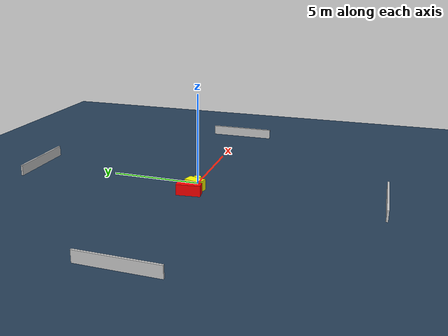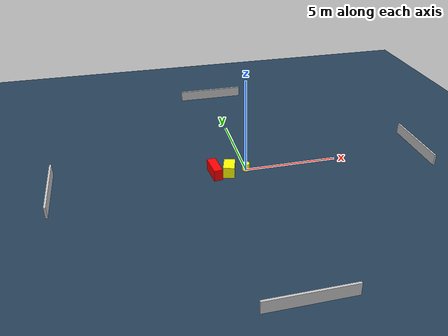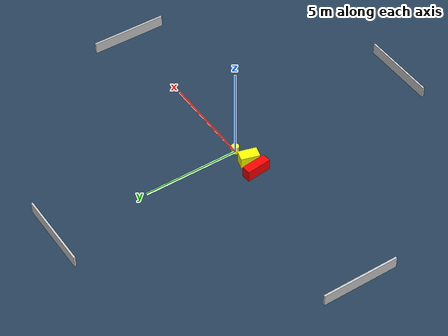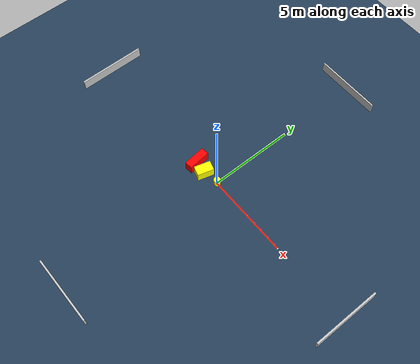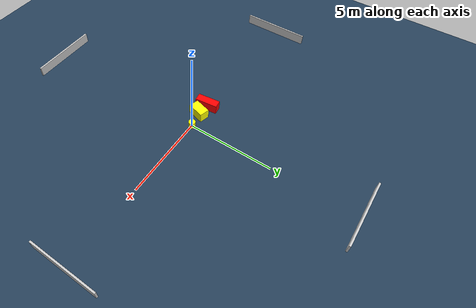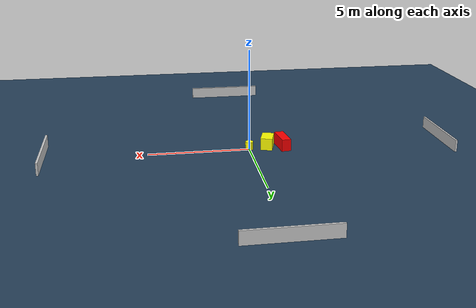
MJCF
<?xml version="1.0" ?>
<mujoco model="generated_environment">
  <option timestep="0.01" integrator="RK4" cone="elliptic"/>
  <default>
    <geom density="1"/>
  </default>
  <asset>
    <texture builtin="gradient" height="3072" name="skybox" rgb1="0.3 0.5 0.7" rgb2="0 0 0" type="skybox" width="512"/>
    <texture builtin="checker" height="300" name="groundplane" rgb1="0.2 0.3 0.4" rgb2="0.1 0.2 0.3" type="2d" width="300"/>
    <material name="groundplane" reflectance="0.2" texrepeat="5 5" texture="groundplane"/>
  </asset>
  <worldbody>
    <light dir="0 0 -1" directional="true" pos="0 0 1.5"/>
    <geom condim="3" friction="0.5 0.005 0.001" material="groundplane" name="floor" pos="0 0 0" size="0 0 0.05" type="plane"/>
    <body name="walls">
      <geom name="wall_1" condim="4" pos="-10.0 0.0 0.3" rgba="0.800000011920929 0.800000011920929 0.800000011920929 1.0" size="0.05 2.0 0.3" type="box"/>
      <geom name="wall_2" condim="4" pos="10.0 0.0 0.3" rgba="0.800000011920929 0.800000011920929 0.800000011920929 1.0" size="0.05 2.0 0.3" type="box"/>
      <geom name="wall_3" condim="4" pos="0.0 -10.0 0.3" rgba="0.800000011920929 0.800000011920929 0.800000011920929 1.0" size="2.0 0.05 0.3" type="box"/>
      <geom name="wall_4" condim="4" pos="0.0 10.0 0.3" rgba="0.800000011920929 0.800000011920929 0.800000011920929 1.0" size="2.0 0.05 0.3" type="box"/>
    </body>
    <body name="robot">
      <joint name="joint_x" type="slide" pos="0 0 0" axis="1 0 0"/>
      <joint name="joint_y" type="slide" pos="0 0 0" axis="0 1 0"/>
      <geom name="robot" type="cylinder" pos="0.0 0.0 0.2" size="0.2 0.2 0.0" mass="5.0" friction="1.0 0.005 0.0001" condim="4" rgba="1.0 1.0 0.0 1.0"/>
    </body>
    <body name="obstacle_1_movable">
      <geom name="obstacle_1_movable" condim="4" pos="-0.9396554568767533 -0.15675251835474102 0.3" euler="0 0 254.19553311112665" friction="0.0 0.005 0.001" rgba="1.0 1.0 0.0 1.0" size="0.48282485995289254 0.29194902865647054 0.3" type="box" mass="0.1"/>
      <joint type="free"/>
    </body>
    <body name="obstacle_2_static">
      <geom name="obstacle_2_static" condim="4" pos="-1.6930327467597412 -0.07065422620333695 0.3" euler="0 0 6.473731316747839" friction="0.0 0.005 0.001" rgba="1.0 0.0 0.0 1.0" size="0.2324521637228147 0.6542054509946265 0.3" type="box"/>
    </body>
  </worldbody>
  <actuator>
    <motor name="actuator_x" joint="joint_x" gear="1" ctrlrange="-1 1"/>
    <motor name="actuator_y" joint="joint_y" gear="1" ctrlrange="-1 1"/>
  </actuator>
</mujoco>
